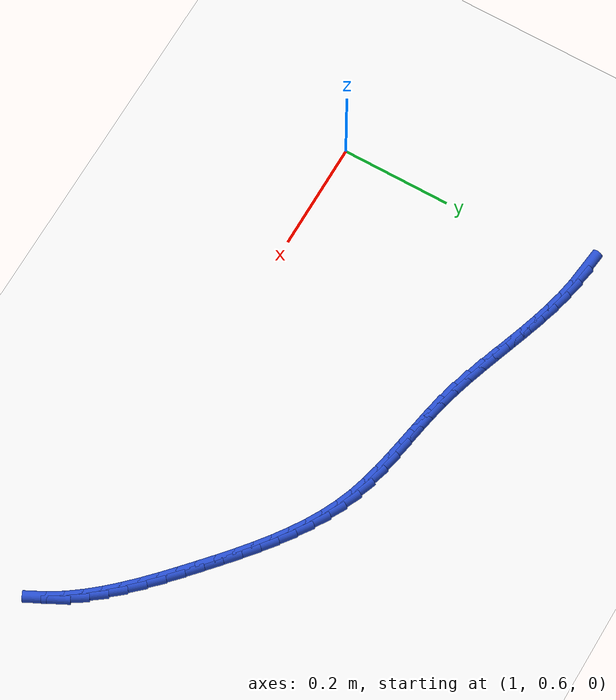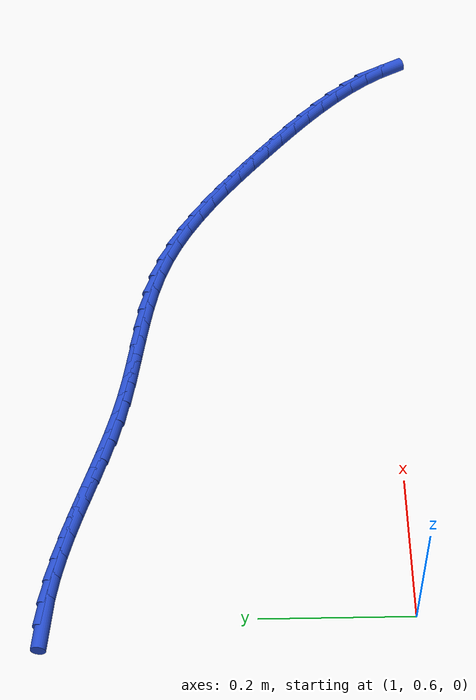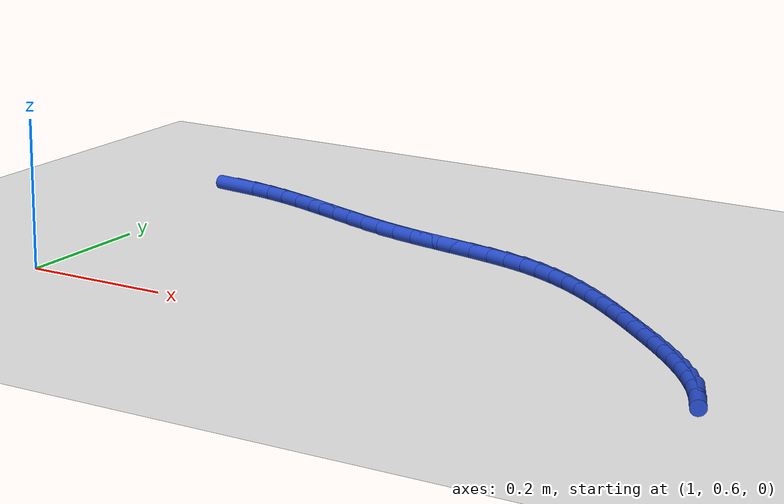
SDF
<sdf version="1.6">
 <world name="default">
  <model name="ground_plane">
   <static>1</static>
   <link name="link">
    <collision name="collision">
     <geometry><plane><normal>0 0 1</normal><size>100 100</size></plane></geometry>
     <surface><friction><ode><mu>100</mu><mu2>50</mu2></ode></friction></surface>
    </collision>
    <visual name="visual">
     <cast_shadows>0</cast_shadows>
     <geometry><plane><normal>0 0 1</normal><size>100 100</size></plane></geometry>
     <material>
      <script><uri>file://media/materials/scripts/gazebo.material</uri><name>Gazebo/WhiteGlow</name></script>
     </material>
    </visual>
   </link>
  </model>
  <model name="line">
   <link name="link_50">
    <pose>0.9972743597371475 1.0677765219194888 0.01 0 1.57 -0.11418028895818372</pose>
    <collision name="collision">
     <geometry><cylinder><radius>0.01</radius><length>0.08</length></cylinder></geometry>
    </collision>
    <visual name="visual">
     <material>
      <script><name>Gazebo/Blue</name><uri>file://media/materials/scripts/gazebo.material</uri></script>
     </material>
     <geometry><cylinder><radius>0.01</radius><length>0.08</length></cylinder></geometry>
    </visual>
   </link>
   <link name="link_51">
    <pose>1.0279104734216 1.0642632004338397 0.01 0 1.57 -0.18216826430119734</pose>
    <collision name="collision">
     <geometry><cylinder><radius>0.01</radius><length>0.08</length></cylinder></geometry>
    </collision>
    <visual name="visual">
     <material>
      <script><name>Gazebo/Blue</name><uri>file://media/materials/scripts/gazebo.material</uri></script>
     </material>
     <geometry><cylinder><radius>0.01</radius><length>0.08</length></cylinder></geometry>
    </visual>
   </link>
   <link name="link_52">
    <pose>1.058325629366141 1.0586604100012877 0.01 0 1.57 -0.23765354318313558</pose>
    <collision name="collision">
     <geometry><cylinder><radius>0.01</radius><length>0.08</length></cylinder></geometry>
    </collision>
    <visual name="visual">
     <material>
      <script><name>Gazebo/Blue</name><uri>file://media/materials/scripts/gazebo.material</uri></script>
     </material>
     <geometry><cylinder><radius>0.01</radius><length>0.08</length></cylinder></geometry>
    </visual>
   </link>
   <link name="link_53">
    <pose>1.088578123386184 1.051332313643428 0.01 0 1.57 -0.2805911259292073</pose>
    <collision name="collision">
     <geometry><cylinder><radius>0.01</radius><length>0.08</length></cylinder></geometry>
    </collision>
    <visual name="visual">
     <material>
      <script><name>Gazebo/Blue</name><uri>file://media/materials/scripts/gazebo.material</uri></script>
     </material>
     <geometry><cylinder><radius>0.01</radius><length>0.08</length></cylinder></geometry>
    </visual>
   </link>
   <link name="link_54">
    <pose>1.1187264208104912 1.042643741972216 0.01 0 1.57 -0.31125092091023554</pose>
    <collision name="collision">
     <geometry><cylinder><radius>0.01</radius><length>0.08</length></cylinder></geometry>
    </collision>
    <visual name="visual">
     <material>
      <script><name>Gazebo/Blue</name><uri>file://media/materials/scripts/gazebo.material</uri></script>
     </material>
     <geometry><cylinder><radius>0.01</radius><length>0.08</length></cylinder></geometry>
    </visual>
   </link>
   <link name="link_55">
    <pose>1.148828986967825 1.0329595255996094 0.01 0 1.57 -0.3299937959665748</pose>
    <collision name="collision">
     <geometry><cylinder><radius>0.01</radius><length>0.08</length></cylinder></geometry>
    </collision>
    <visual name="visual">
     <material>
      <script><name>Gazebo/Blue</name><uri>file://media/materials/scripts/gazebo.material</uri></script>
     </material>
     <geometry><cylinder><radius>0.01</radius><length>0.08</length></cylinder></geometry>
    </visual>
   </link>
   <link name="link_56">
    <pose>1.1789442871869484 1.0226444951375642 0.01 0 1.57 -0.3371392378755875</pose>
    <collision name="collision">
     <geometry><cylinder><radius>0.01</radius><length>0.08</length></cylinder></geometry>
    </collision>
    <visual name="visual">
     <material>
      <script><name>Gazebo/Blue</name><uri>file://media/materials/scripts/gazebo.material</uri></script>
     </material>
     <geometry><cylinder><radius>0.01</radius><length>0.08</length></cylinder></geometry>
    </visual>
   </link>
   <link name="link_57">
    <pose>1.2091307867966221 1.0120634811980376 0.01 0 1.57 -0.33289402226815085</pose>
    <collision name="collision">
     <geometry><cylinder><radius>0.01</radius><length>0.08</length></cylinder></geometry>
    </collision>
    <visual name="visual">
     <material>
      <script><name>Gazebo/Blue</name><uri>file://media/materials/scripts/gazebo.material</uri></script>
     </material>
     <geometry><cylinder><radius>0.01</radius><length>0.08</length></cylinder></geometry>
    </visual>
   </link>
   <link name="link_58">
    <pose>1.2394469511256094 1.0015813143929861 0.01 0 1.57 -0.31733000665880307</pose>
    <collision name="collision">
     <geometry><cylinder><radius>0.01</radius><length>0.08</length></cylinder></geometry>
    </collision>
    <visual name="visual">
     <material>
      <script><name>Gazebo/Blue</name><uri>file://media/materials/scripts/gazebo.material</uri></script>
     </material>
     <geometry><cylinder><radius>0.01</radius><length>0.08</length></cylinder></geometry>
    </visual>
   </link>
   <link name="link_59">
    <pose>1.2699512455026727 0.9915628253343665 0.01 0 1.57 -0.2904037225222117</pose>
    <collision name="collision">
     <geometry><cylinder><radius>0.01</radius><length>0.08</length></cylinder></geometry>
    </collision>
    <visual name="visual">
     <material>
      <script><name>Gazebo/Blue</name><uri>file://media/materials/scripts/gazebo.material</uri></script>
     </material>
     <geometry><cylinder><radius>0.01</radius><length>0.08</length></cylinder></geometry>
    </visual>
   </link>
   <link name="link_60">
    <pose>1.3007021352565744 0.9823728446341354 0.01 0 1.57 -0.25205179798326144</pose>
    <collision name="collision">
     <geometry><cylinder><radius>0.01</radius><length>0.08</length></cylinder></geometry>
    </collision>
    <visual name="visual">
     <material>
      <script><name>Gazebo/Blue</name><uri>file://media/materials/scripts/gazebo.material</uri></script>
     </material>
     <geometry><cylinder><radius>0.01</radius><length>0.08</length></cylinder></geometry>
    </visual>
   </link>
   <link name="link_61">
    <pose>1.3317577984635374 0.9743751217963575 0.01 0 1.57 -0.21007401955564767</pose>
    <collision name="collision">
     <geometry><cylinder><radius>0.01</radius><length>0.08</length></cylinder></geometry>
    </collision>
    <visual name="visual">
     <material>
      <script><name>Gazebo/Blue</name><uri>file://media/materials/scripts/gazebo.material</uri></script>
     </material>
     <geometry><cylinder><radius>0.01</radius><length>0.08</length></cylinder></geometry>
    </visual>
   </link>
   <link name="link_62">
    <pose>1.363111699380705 0.9676898484405105 0.01 0 1.57 -0.1821919166334967</pose>
    <collision name="collision">
     <geometry><cylinder><radius>0.01</radius><length>0.08</length></cylinder></geometry>
    </collision>
    <visual name="visual">
     <material>
      <script><name>Gazebo/Blue</name><uri>file://media/materials/scripts/gazebo.material</uri></script>
     </material>
     <geometry><cylinder><radius>0.01</radius><length>0.08</length></cylinder></geometry>
    </visual>
   </link>
   <link name="link_63">
    <pose>1.3946109964690374 0.9618865775322786 0.01 0 1.57 -0.17077191046090698</pose>
    <collision name="collision">
     <geometry><cylinder><radius>0.01</radius><length>0.08</length></cylinder></geometry>
    </collision>
    <visual name="visual">
     <material>
      <script><name>Gazebo/Blue</name><uri>file://media/materials/scripts/gazebo.material</uri></script>
     </material>
     <geometry><cylinder><radius>0.01</radius><length>0.08</length></cylinder></geometry>
    </visual>
   </link>
   <link name="link_64">
    <pose>1.4260827509179492 0.9564592236495564 0.01 0 1.57 -0.17588335814341197</pose>
    <collision name="collision">
     <geometry><cylinder><radius>0.01</radius><length>0.08</length></cylinder></geometry>
    </collision>
    <visual name="visual">
     <material>
      <script><name>Gazebo/Blue</name><uri>file://media/materials/scripts/gazebo.material</uri></script>
     </material>
     <geometry><cylinder><radius>0.01</radius><length>0.08</length></cylinder></geometry>
    </visual>
   </link>
   <link name="link_65">
    <pose>1.457354023916859 0.9509017013702384 0.01 0 1.57 -0.1978375962168804</pose>
    <collision name="collision">
     <geometry><cylinder><radius>0.01</radius><length>0.08</length></cylinder></geometry>
    </collision>
    <visual name="visual">
     <material>
      <script><name>Gazebo/Blue</name><uri>file://media/materials/scripts/gazebo.material</uri></script>
     </material>
     <geometry><cylinder><radius>0.01</radius><length>0.08</length></cylinder></geometry>
    </visual>
   </link>
   <link name="link_66">
    <pose>1.4882518766551822 0.9447079252722191 0.01 0 1.57 -0.23715673189919365</pose>
    <collision name="collision">
     <geometry><cylinder><radius>0.01</radius><length>0.08</length></cylinder></geometry>
    </collision>
    <visual name="visual">
     <material>
      <script><name>Gazebo/Blue</name><uri>file://media/materials/scripts/gazebo.material</uri></script>
     </material>
     <geometry><cylinder><radius>0.01</radius><length>0.08</length></cylinder></geometry>
    </visual>
   </link>
   <link name="link_67">
    <pose>1.5186033703223352 0.9373718099333933 0.01 0 1.57 -0.29439178246259684</pose>
    <collision name="collision">
     <geometry><cylinder><radius>0.01</radius><length>0.08</length></cylinder></geometry>
    </collision>
    <visual name="visual">
     <material>
      <script><name>Gazebo/Blue</name><uri>file://media/materials/scripts/gazebo.material</uri></script>
     </material>
     <geometry><cylinder><radius>0.01</radius><length>0.08</length></cylinder></geometry>
    </visual>
   </link>
   <link name="link_68">
    <pose>1.5482355661077347 0.9283872699316553 0.01 0 1.57 -0.36829055858154414</pose>
    <collision name="collision">
     <geometry><cylinder><radius>0.01</radius><length>0.08</length></cylinder></geometry>
    </collision>
    <visual name="visual">
     <material>
      <script><name>Gazebo/Blue</name><uri>file://media/materials/scripts/gazebo.material</uri></script>
     </material>
     <geometry><cylinder><radius>0.01</radius><length>0.08</length></cylinder></geometry>
    </visual>
   </link>
   <link name="link_69">
    <pose>1.5769912511873896 0.9172905126909958 0.01 0 1.57 -0.4431475086676228</pose>
    <collision name="collision">
     <geometry><cylinder><radius>0.01</radius><length>0.08</length></cylinder></geometry>
    </collision>
    <visual name="visual">
     <material>
      <script><name>Gazebo/Blue</name><uri>file://media/materials/scripts/gazebo.material</uri></script>
     </material>
     <geometry><cylinder><radius>0.01</radius><length>0.08</length></cylinder></geometry>
    </visual>
   </link>
   <link name="link_70">
    <pose>1.6048759991911818 0.9040555370833465 0.01 0 1.57 -0.509242013202018</pose>
    <collision name="collision">
     <geometry><cylinder><radius>0.01</radius><length>0.08</length></cylinder></geometry>
    </collision>
    <visual name="visual">
     <material>
      <script><name>Gazebo/Blue</name><uri>file://media/materials/scripts/gazebo.material</uri></script>
     </material>
     <geometry><cylinder><radius>0.01</radius><length>0.08</length></cylinder></geometry>
    </visual>
   </link>
   <link name="link_71">
    <pose>1.6319916184342993 0.8889151517354923 0.01 0 1.57 -0.5661393514712173</pose>
    <collision name="collision">
     <geometry><cylinder><radius>0.01</radius><length>0.08</length></cylinder></geometry>
    </collision>
    <visual name="visual">
     <material>
      <script><name>Gazebo/Blue</name><uri>file://media/materials/scripts/gazebo.material</uri></script>
     </material>
     <geometry><cylinder><radius>0.01</radius><length>0.08</length></cylinder></geometry>
    </visual>
   </link>
   <link name="link_72">
    <pose>1.6584411688008183 0.8721055311940688 0.01 0 1.57 -0.6138846072783865</pose>
    <collision name="collision">
     <geometry><cylinder><radius>0.01</radius><length>0.08</length></cylinder></geometry>
    </collision>
    <visual name="visual">
     <material>
      <script><name>Gazebo/Blue</name><uri>file://media/materials/scripts/gazebo.material</uri></script>
     </material>
     <geometry><cylinder><radius>0.01</radius><length>0.08</length></cylinder></geometry>
    </visual>
   </link>
   <link name="link_73">
    <pose>1.6843277101748158 0.8538628500057109 0.01 0 1.57 -0.6527399754456636</pose>
    <collision name="collision">
     <geometry><cylinder><radius>0.01</radius><length>0.08</length></cylinder></geometry>
    </collision>
    <visual name="visual">
     <material>
      <script><name>Gazebo/Blue</name><uri>file://media/materials/scripts/gazebo.material</uri></script>
     </material>
     <geometry><cylinder><radius>0.01</radius><length>0.08</length></cylinder></geometry>
    </visual>
   </link>
   <link name="link_74">
    <pose>1.7097543024403676 0.8344232827170543 0.01 0 1.57 -0.6830644278055301</pose>
    <collision name="collision">
     <geometry><cylinder><radius>0.01</radius><length>0.08</length></cylinder></geometry>
    </collision>
    <visual name="visual">
     <material>
      <script><name>Gazebo/Blue</name><uri>file://media/materials/scripts/gazebo.material</uri></script>
     </material>
     <geometry><cylinder><radius>0.01</radius><length>0.08</length></cylinder></geometry>
    </visual>
   </link>
   <link name="link_75">
    <pose>1.7348240054815502 0.8140230038747343 0.01 0 1.57 -0.7052263943187325</pose>
    <collision name="collision">
     <geometry><cylinder><radius>0.01</radius><length>0.08</length></cylinder></geometry>
    </collision>
    <visual name="visual">
     <material>
      <script><name>Gazebo/Blue</name><uri>file://media/materials/scripts/gazebo.material</uri></script>
     </material>
     <geometry><cylinder><radius>0.01</radius><length>0.08</length></cylinder></geometry>
    </visual>
   </link>
   <link name="link_76">
    <pose>1.7596398791824406 0.7928981880253855 0.01 0 1.57 -0.7195462570867244</pose>
    <collision name="collision">
     <geometry><cylinder><radius>0.01</radius><length>0.08</length></cylinder></geometry>
    </collision>
    <visual name="visual">
     <material>
      <script><name>Gazebo/Blue</name><uri>file://media/materials/scripts/gazebo.material</uri></script>
     </material>
     <geometry><cylinder><radius>0.01</radius><length>0.08</length></cylinder></geometry>
    </visual>
   </link>
   <link name="link_77">
    <pose>1.7843049834271156 0.7712850097156443 0.01 0 1.57 -0.7276619179598649</pose>
    <collision name="collision">
     <geometry><cylinder><radius>0.01</radius><length>0.08</length></cylinder></geometry>
    </collision>
    <visual name="visual">
     <material>
      <script><name>Gazebo/Blue</name><uri>file://media/materials/scripts/gazebo.material</uri></script>
     </material>
     <geometry><cylinder><radius>0.01</radius><length>0.08</length></cylinder></geometry>
    </visual>
   </link>
   <link name="link_78">
    <pose>1.8088868356072787 0.749389567690727 0.01 0 1.57 -0.7398147760427807</pose>
    <collision name="collision">
     <geometry><cylinder><radius>0.01</radius><length>0.08</length></cylinder></geometry>
    </collision>
    <visual name="visual">
     <material>
      <script><name>Gazebo/Blue</name><uri>file://media/materials/scripts/gazebo.material</uri></script>
     </material>
     <geometry><cylinder><radius>0.01</radius><length>0.08</length></cylinder></geometry>
    </visual>
   </link>
   <link name="link_79">
    <pose>1.8331964835537242 0.7272009379979725 0.01 0 1.57 -0.7606226144993914</pose>
    <collision name="collision">
     <geometry><cylinder><radius>0.01</radius><length>0.08</length></cylinder></geometry>
    </collision>
    <visual name="visual">
     <material>
      <script><name>Gazebo/Blue</name><uri>file://media/materials/scripts/gazebo.material</uri></script>
     </material>
     <geometry><cylinder><radius>0.01</radius><length>0.08</length></cylinder></geometry>
    </visual>
   </link>
   <link name="link_80">
    <pose>1.8569324111203545 0.704612945857053 0.01 0 1.57 -0.7904842283281523</pose>
    <collision name="collision">
     <geometry><cylinder><radius>0.01</radius><length>0.08</length></cylinder></geometry>
    </collision>
    <visual name="visual">
     <material>
      <script><name>Gazebo/Blue</name><uri>file://media/materials/scripts/gazebo.material</uri></script>
     </material>
     <geometry><cylinder><radius>0.01</radius><length>0.08</length></cylinder></geometry>
    </visual>
   </link>
   <link name="link_81">
    <pose>1.8797926203811481 0.6815190088089325 0.01 0 1.57 -0.829960356389395</pose>
    <collision name="collision">
     <geometry><cylinder><radius>0.01</radius><length>0.08</length></cylinder></geometry>
    </collision>
    <visual name="visual">
     <material>
      <script><name>Gazebo/Blue</name><uri>file://media/materials/scripts/gazebo.material</uri></script>
     </material>
     <geometry><cylinder><radius>0.01</radius><length>0.08</length></cylinder></geometry>
    </visual>
   </link>
   <link name="link_82">
    <pose>1.9014751134100851 0.6578125443945753 0.01 0 1.57 -0.8797386405256243</pose>
    <collision name="collision">
     <geometry><cylinder><radius>0.01</radius><length>0.08</length></cylinder></geometry>
    </collision>
    <visual name="visual">
     <material>
      <script><name>Gazebo/Blue</name><uri>file://media/materials/scripts/gazebo.material</uri></script>
     </material>
     <geometry><cylinder><radius>0.01</radius><length>0.08</length></cylinder></geometry>
    </visual>
   </link>
   <link name="link_83">
    <pose>1.9216778922811433 0.6333869701549465 0.01 0 1.57 -0.9405379031071892</pose>
    <collision name="collision">
     <geometry><cylinder><radius>0.01</radius><length>0.08</length></cylinder></geometry>
    </collision>
    <visual name="visual">
     <material>
      <script><name>Gazebo/Blue</name><uri>file://media/materials/scripts/gazebo.material</uri></script>
     </material>
     <geometry><cylinder><radius>0.01</radius><length>0.08</length></cylinder></geometry>
    </visual>
   </link>
   <link name="link_84">
    <pose>1.9400989590683015 0.6081357036310094 0.01 0 1.57 -1.0129486797777298</pose>
    <collision name="collision">
     <geometry><cylinder><radius>0.01</radius><length>0.08</length></cylinder></geometry>
    </collision>
    <visual name="visual">
     <material>
      <script><name>Gazebo/Blue</name><uri>file://media/materials/scripts/gazebo.material</uri></script>
     </material>
     <geometry><cylinder><radius>0.01</radius><length>0.08</length></cylinder></geometry>
    </visual>
   </link>
   <link name="link_85">
    <pose>1.9564363158455396 0.581952162363729 0.01 0 1.57 -1.097193862496653</pose>
    <collision name="collision">
     <geometry><cylinder><radius>0.01</radius><length>0.08</length></cylinder></geometry>
    </collision>
    <visual name="visual">
     <material>
      <script><name>Gazebo/Blue</name><uri>file://media/materials/scripts/gazebo.material</uri></script>
     </material>
     <geometry><cylinder><radius>0.01</radius><length>0.08</length></cylinder></geometry>
    </visual>
   </link>
  </model>
 </world>
</sdf>
